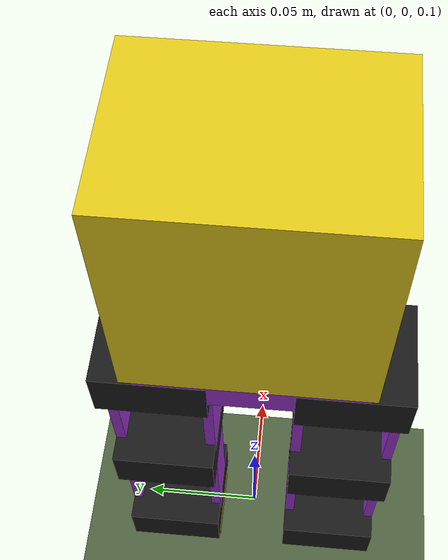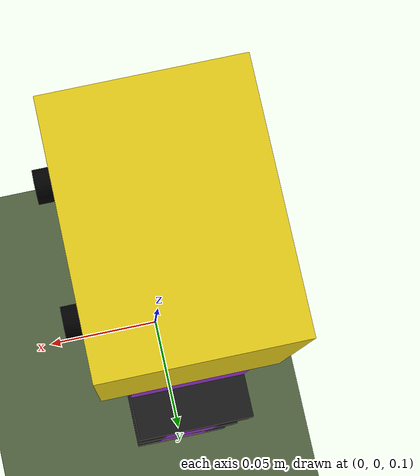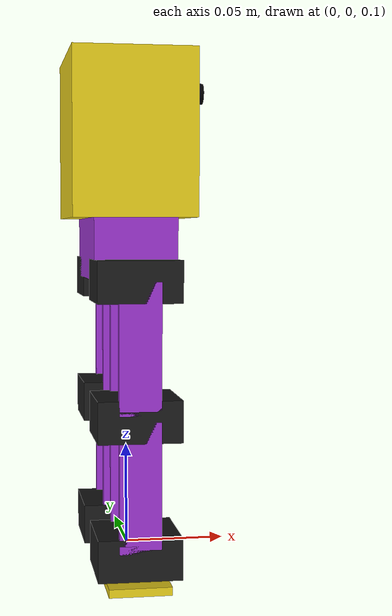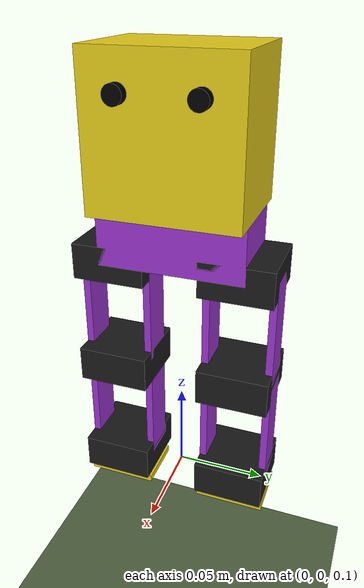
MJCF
<mujoco model="BeeWalker">
  <compiler angle="degree" coordinate="local" inertiafromgeom="true"/>
  <option timestep="0.002" gravity="0 0 -9.81"/>

  <visual>
    <global offwidth="1280" offheight="720"/>
    <quality shadowsize="4096"/>
    <map fogstart="6" fogend="18"/>
    <headlight ambient="0.18 0.2 0.22" diffuse="0 0 0" specular="0 0 0"/>
  </visual>

  <default>
    <joint armature="0.01" damping="0.5" limited="true"/>
    <geom condim="3" friction="1.0 0.5 0.5" margin="0.001"/>
    <motor ctrlrange="-1.57 1.57" ctrllimited="true"/>

    <!-- COMPONENTS -->
    <default class="servo_case">
        <geom type="box" size="0.02 0.01 0.02" rgba="0.1 0.1 0.1 1" mass="0.055"/>
    </default>
    <default class="servo_horn">
        <geom type="cylinder" size="0.01 0.003" rgba="0.8 0.8 0.8 1" mass="0.005"/>
    </default>

    <!-- BRACKETS (Generic Plate) -->
    <default class="plate">
        <geom type="box" size="0.002 0.02 0.03" rgba="0.6 0.2 0.8 1" mass="0.01"/>
    </default>

    <!-- FOOT -->
    <default class="foot_plate">
        <geom type="box" size="0.015 0.02 0.002" rgba="0.9 0.8 0.1 1" mass="0.03"/>
    </default>

    <!-- TORSO/HEAD BODY -->
    <default class="torso_body">
        <geom type="box" size="0.03 0.04 0.04" rgba="0.9 0.8 0.1 1" mass="0.2"/>
    </default>
  </default>

  <asset>
    <texture type="skybox" builtin="gradient" rgb1=".45 .6 .85" rgb2=".2 .3 .5" width="256" height="256"/>
    <texture name="grid" type="2d" builtin="checker" width="512" height="512" rgb1=".35 .42 .28" rgb2=".28 .35 .22"/>
    <material name="grid" texture="grid" texrepeat="12 12" texuniform="true" reflectance=".03"/>
  </asset>

  <worldbody>
    <light name="sun" pos="3 2 5" dir="-0.3 -0.2 -0.9" castshadow="true" diffuse="1.3 1.2 1.05" specular="0.4 0.38 0.3"/>
    <light name="sky" pos="0 0 6" dir="0 0 -1" castshadow="false" diffuse="0.35 0.4 0.5" specular="0.1 0.1 0.12"/>
    <geom name="floor" type="plane" size="50 50 0.1" material="grid"/>

    <!-- Pelvis/Hip Base - This is the floating root -->
    <body name="pelvis" pos="0 0 0.25">
      <freejoint/>

      <!-- Pelvis structure - the base that connects both hip servos -->
      <geom name="pelvis_base" type="box" size="0.02 0.04 0.015" rgba="0.6 0.2 0.8 1" mass="0.05"/>

      <!-- TORSO/HEAD sits ON TOP of the pelvis -->
      <body name="torso" pos="0 0 0.055">
        <geom class="torso_body"/>
        <!-- Eyes/Front indicator -->
        <geom type="cylinder" size="0.005 0.005" pos="0.03 0.02 0.02" euler="0 90 0" rgba="0 0 0 1"/>
        <geom type="cylinder" size="0.005 0.005" pos="0.03 -0.02 0.02" euler="0 90 0" rgba="0 0 0 1"/>
        <!-- IMU sensor site (MPU-6050 location) -->
        <site name="imu_site" pos="0 0 0" size="0.005"/>
      </body>

      <!-- ================= LEFT LEG (Y+) ================= -->
      <!-- Hip servo mounted at the bottom of pelvis, leg goes DOWN -->
      <body name="left_hip_structure" pos="0 0.035 -0.015">

          <!-- HIP SERVO: Mounted horizontally, horn points OUT (+Y) -->
          <geom class="servo_case" euler="90 0 0"/>
          <geom class="servo_horn" pos="0 0.015 0" euler="90 0 0"/>

          <body name="left_thigh" pos="0 0 0">
            <!-- PITCH JOINT - rotates around Y axis (pitch forward/backward) -->
            <joint name="left_hip_joint" type="hinge" axis="0 1 0" range="-90 90"/>

            <!-- BRACKET: Connects to Horn, extends DOWN -->
            <!-- Outer Plate (attached to horn) -->
            <geom class="plate" pos="0 0.018 -0.03" size="0.01 0.002 0.03"/>
            <!-- Inner Plate (holding next servo) -->
            <geom class="plate" pos="0 -0.018 -0.03" size="0.01 0.002 0.03"/>
            <!-- Connecting Plate (Bottom) -->
            <geom class="plate" pos="0 0 -0.06" size="0.01 0.02 0.002"/>

            <!-- KNEE SERVO: Mounted between brackets -->
            <body name="left_knee_structure" pos="0 0 -0.065">
                <geom class="servo_case" euler="90 0 0"/>
                <geom class="servo_horn" pos="0 0.015 0" euler="90 0 0"/>

                <body name="left_shin" pos="0 0 0">
                    <joint name="left_knee_joint" type="hinge" axis="0 1 0" range="-90 90"/>

                    <geom class="plate" pos="0 0.018 -0.03" size="0.01 0.002 0.03"/>
                    <geom class="plate" pos="0 -0.018 -0.03" size="0.01 0.002 0.03"/>
                    <geom class="plate" pos="0 0 -0.06" size="0.01 0.02 0.002"/>

                    <body name="left_ankle_structure" pos="0 0 -0.065">
                         <geom class="servo_case" euler="90 0 0"/>
                         <geom class="servo_horn" pos="0 0.015 0" euler="90 0 0"/>

                         <body name="left_foot" pos="0 0 0">
                            <joint name="left_ankle_joint" type="hinge" axis="0 1 0" range="-45 45"/>
                            <geom class="foot_plate" pos="0 0 -0.015"/>
                         </body>
                    </body>
                </body>
            </body>
          </body>
      </body>

      <!-- ================= RIGHT LEG (Y-) ================= -->
      <body name="right_hip_structure" pos="0 -0.035 -0.015">

          <!-- HIP SERVO: Horn faces OUT (-Y) -->
          <geom class="servo_case" euler="90 0 0"/>
          <geom class="servo_horn" pos="0 -0.015 0" euler="90 0 0"/>

          <body name="right_thigh" pos="0 0 0">
            <joint name="right_hip_joint" type="hinge" axis="0 1 0" range="-90 90"/>

            <!-- Outer Plate (on Horn -Y) -->
            <geom class="plate" pos="0 -0.018 -0.03" size="0.01 0.002 0.03"/>
            <!-- Inner Plate -->
            <geom class="plate" pos="0 0.018 -0.03" size="0.01 0.002 0.03"/>
            <geom class="plate" pos="0 0 -0.06" size="0.01 0.02 0.002"/>

            <body name="right_knee_structure" pos="0 0 -0.065">
                <geom class="servo_case" euler="90 0 0"/>
                <geom class="servo_horn" pos="0 -0.015 0" euler="90 0 0"/>

                <body name="right_shin" pos="0 0 0">
                    <joint name="right_knee_joint" type="hinge" axis="0 1 0" range="-90 90"/>

                    <geom class="plate" pos="0 -0.018 -0.03" size="0.01 0.002 0.03"/>
                    <geom class="plate" pos="0 0.018 -0.03" size="0.01 0.002 0.03"/>
                    <geom class="plate" pos="0 0 -0.06" size="0.01 0.02 0.002"/>

                    <body name="right_ankle_structure" pos="0 0 -0.065">
                         <geom class="servo_case" euler="90 0 0"/>
                         <geom class="servo_horn" pos="0 -0.015 0" euler="90 0 0"/>

                         <body name="right_foot" pos="0 0 0">
                            <joint name="right_ankle_joint" type="hinge" axis="0 1 0" range="-45 45"/>
                            <geom class="foot_plate" pos="0 0 -0.015"/>
                         </body>
                    </body>
                </body>
            </body>
          </body>
      </body>

    </body>
  </worldbody>

  <actuator>
    <general name="servo_left_hip" joint="left_hip_joint"
             gainprm="50 0 0" biasprm="0 -50 0"
             dyntype="filter" dynprm="0.02"
             ctrllimited="true" ctrlrange="-1.57 1.57"
             forcelimited="true" forcerange="-0.7 0.7"/>
    <general name="servo_left_knee" joint="left_knee_joint"
             gainprm="50 0 0" biasprm="0 -50 0"
             dyntype="filter" dynprm="0.02"
             ctrllimited="true" ctrlrange="-1.57 1.57"
             forcelimited="true" forcerange="-0.7 0.7"/>
    <general name="servo_left_ankle" joint="left_ankle_joint"
             gainprm="50 0 0" biasprm="0 -50 0"
             dyntype="filter" dynprm="0.02"
             ctrllimited="true" ctrlrange="-1.57 1.57"
             forcelimited="true" forcerange="-0.7 0.7"/>
    <general name="servo_right_hip" joint="right_hip_joint"
             gainprm="50 0 0" biasprm="0 -50 0"
             dyntype="filter" dynprm="0.02"
             ctrllimited="true" ctrlrange="-1.57 1.57"
             forcelimited="true" forcerange="-0.7 0.7"/>
    <general name="servo_right_knee" joint="right_knee_joint"
             gainprm="50 0 0" biasprm="0 -50 0"
             dyntype="filter" dynprm="0.02"
             ctrllimited="true" ctrlrange="-1.57 1.57"
             forcelimited="true" forcerange="-0.7 0.7"/>
    <general name="servo_right_ankle" joint="right_ankle_joint"
             gainprm="50 0 0" biasprm="0 -50 0"
             dyntype="filter" dynprm="0.02"
             ctrllimited="true" ctrlrange="-1.57 1.57"
             forcelimited="true" forcerange="-0.7 0.7"/>
  </actuator>

  <sensor>
    <!-- IMU sensors (simulating MPU-6050) -->
    <accelerometer name="imu_accel" site="imu_site"/>
    <gyro name="imu_gyro" site="imu_site"/>
    <!-- Additional sensors for observations -->
    <framequat name="pelvis_orientation" objtype="body" objname="pelvis"/>
    <frameangvel name="pelvis_angvel" objtype="body" objname="pelvis"/>
    <framexaxis name="pelvis_xaxis" objtype="body" objname="pelvis"/>
  </sensor>

</mujoco>
